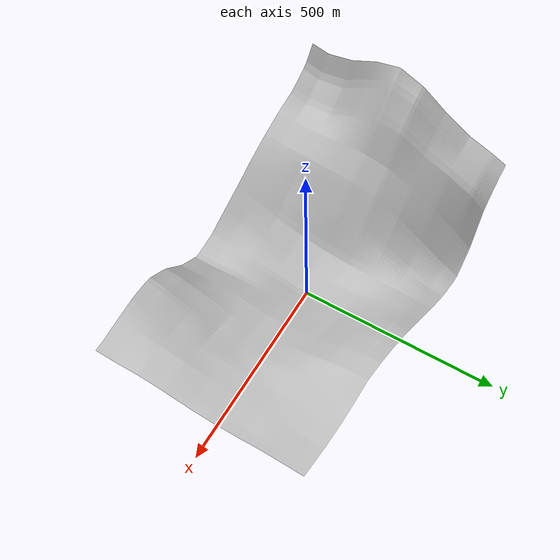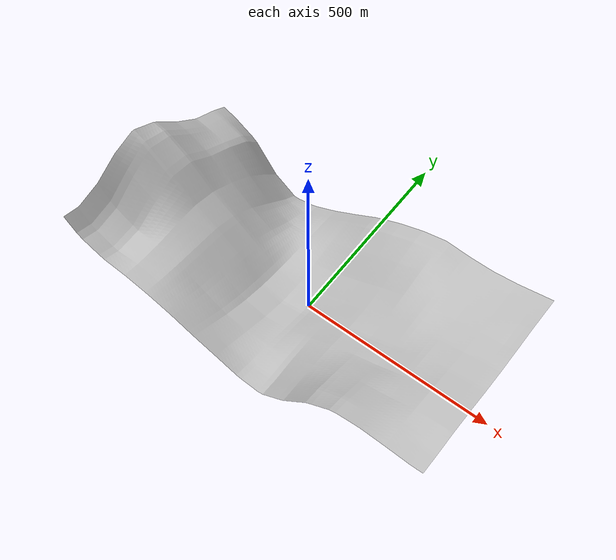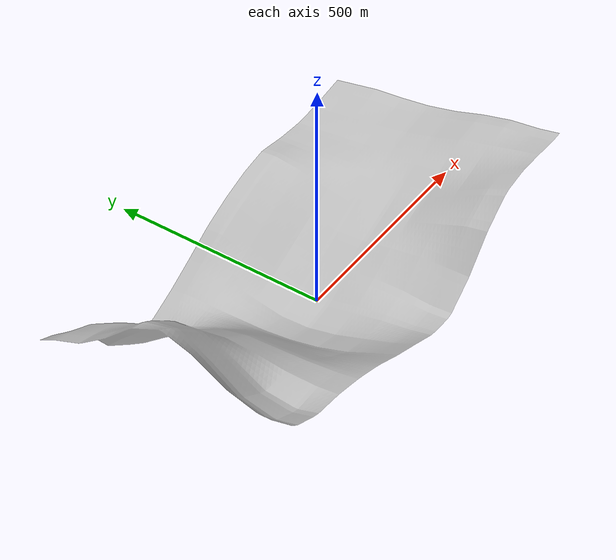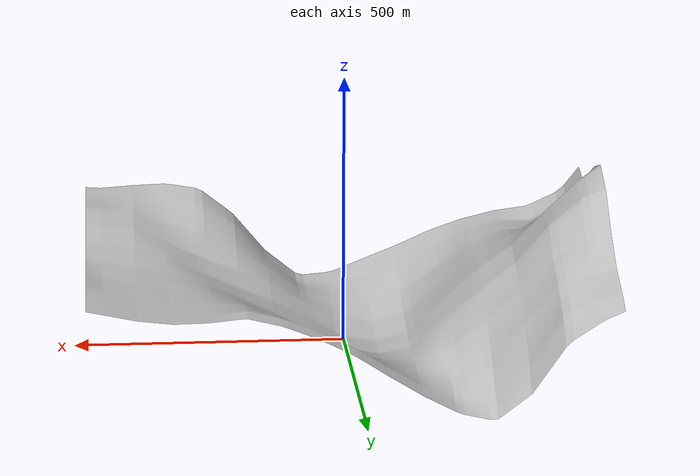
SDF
<?xml version="1.0" ?>
<sdf version="1.4">
  <model name="v1">
	<static>true</static>
	<link name="link">
	  <pose>0 0 4.2 0 0 0</pose>
	    <collision name="my_collision">
		<geometry>
                   <mesh><uri>model://v1/untitled.dae</uri></mesh>
		 </geometry>
	    </collision>

	    <visual name="my_visual">
		<geometry>
                   <mesh><uri>model://v1/untitled.dae</uri></mesh>
		 </geometry>
	    </visual>
	</link>
    </model>
</sdf>
